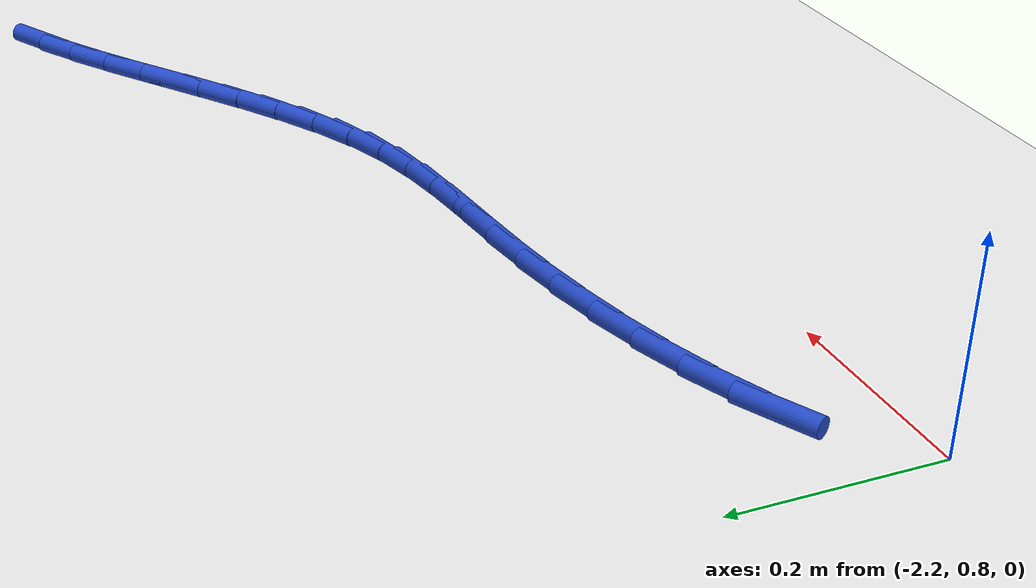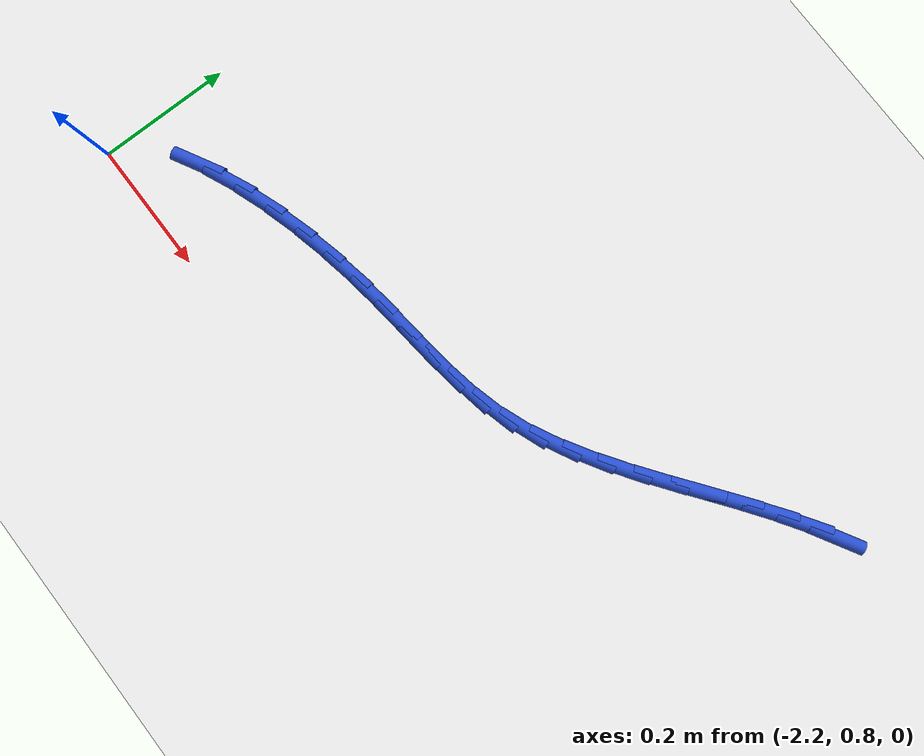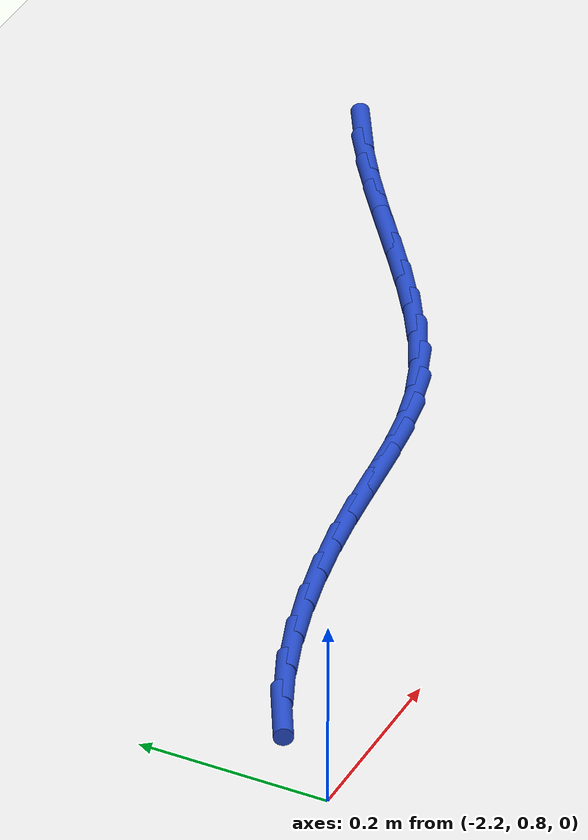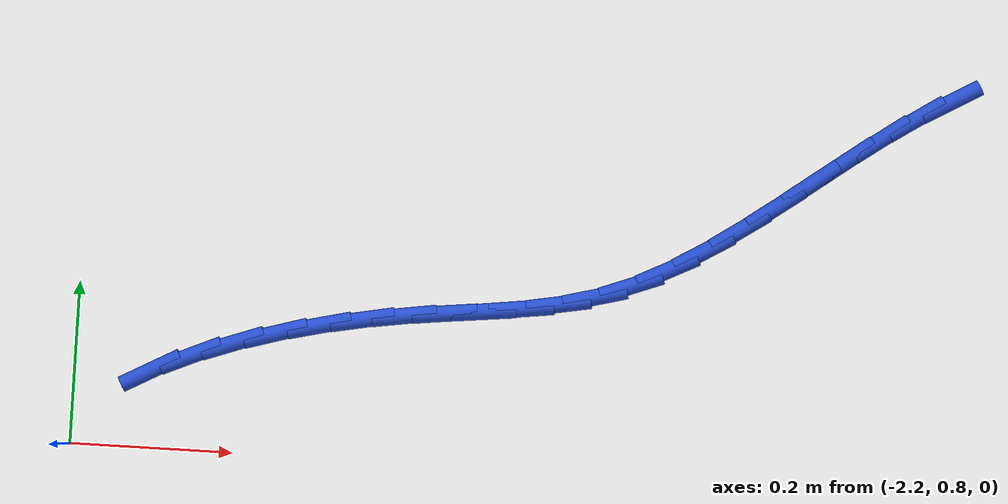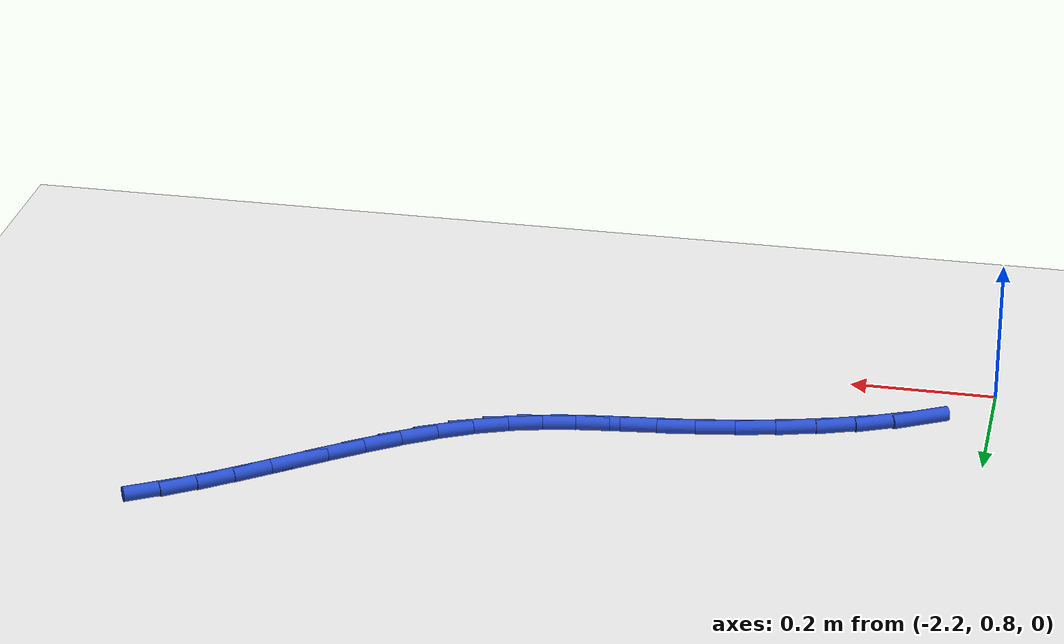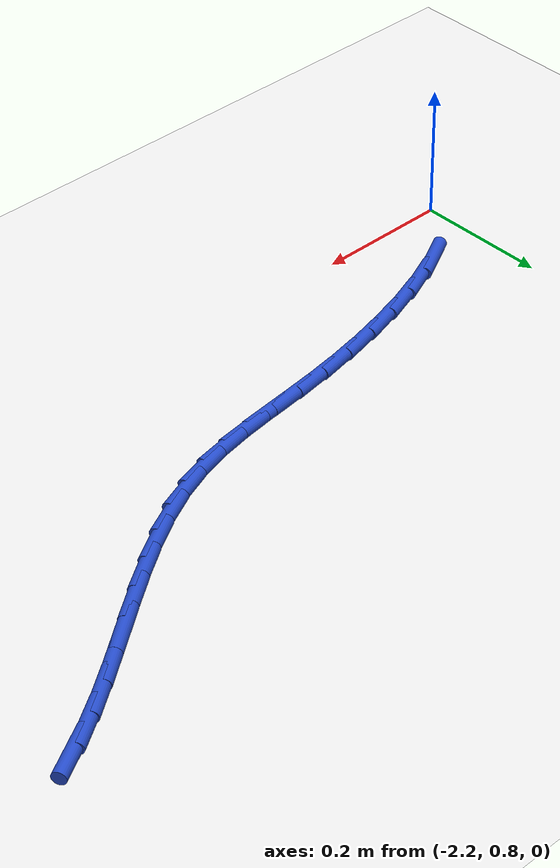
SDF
<sdf version="1.6">
 <world name="default">
  <model name="ground_plane">
   <static>1</static>
   <link name="link">
    <collision name="collision">
     <geometry><plane><normal>0 0 1</normal><size>100 100</size></plane></geometry>
     <surface><friction><ode><mu>100</mu><mu2>50</mu2></ode></friction></surface>
    </collision>
    <visual name="visual">
     <cast_shadows>0</cast_shadows>
     <geometry><plane><normal>0 0 1</normal><size>100 100</size></plane></geometry>
     <material>
      <script><uri>file://media/materials/scripts/gazebo.material</uri><name>Gazebo/WhiteGlow</name></script>
     </material>
    </visual>
   </link>
  </model>
  <model name="line">
   <link name="link_42">
    <pose>-1.1442312650430837 1.2815156157984304 0.01 0 1.57 0.5200794726018029</pose>
    <collision name="collision">
     <geometry><cylinder><radius>0.01</radius><length>0.08</length></cylinder></geometry>
    </collision>
    <visual name="visual">
     <material>
      <script><name>Gazebo/Blue</name><uri>file://media/materials/scripts/gazebo.material</uri></script>
     </material>
     <geometry><cylinder><radius>0.01</radius><length>0.08</length></cylinder></geometry>
    </visual>
   </link>
   <link name="link_43">
    <pose>-1.1851489440574348 1.2580833965421379 0.01 0 1.57 0.5809621670062222</pose>
    <collision name="collision">
     <geometry><cylinder><radius>0.01</radius><length>0.08</length></cylinder></geometry>
    </collision>
    <visual name="visual">
     <material>
      <script><name>Gazebo/Blue</name><uri>file://media/materials/scripts/gazebo.material</uri></script>
     </material>
     <geometry><cylinder><radius>0.01</radius><length>0.08</length></cylinder></geometry>
    </visual>
   </link>
   <link name="link_44">
    <pose>-1.226392740399729 1.2310050093205518 0.01 0 1.57 0.6190403841027216</pose>
    <collision name="collision">
     <geometry><cylinder><radius>0.01</radius><length>0.08</length></cylinder></geometry>
    </collision>
    <visual name="visual">
     <material>
      <script><name>Gazebo/Blue</name><uri>file://media/materials/scripts/gazebo.material</uri></script>
     </material>
     <geometry><cylinder><radius>0.01</radius><length>0.08</length></cylinder></geometry>
    </visual>
   </link>
   <link name="link_45">
    <pose>-1.2679583298730592 1.2013911354736106 0.01 0 1.57 0.6377675494994247</pose>
    <collision name="collision">
     <geometry><cylinder><radius>0.01</radius><length>0.08</length></cylinder></geometry>
    </collision>
    <visual name="visual">
     <material>
      <script><name>Gazebo/Blue</name><uri>file://media/materials/scripts/gazebo.material</uri></script>
     </material>
     <geometry><cylinder><radius>0.01</radius><length>0.08</length></cylinder></geometry>
    </visual>
   </link>
   <link name="link_46">
    <pose>-1.3098413882805162 1.170352456341253 0.01 0 1.57 0.639021673335138</pose>
    <collision name="collision">
     <geometry><cylinder><radius>0.01</radius><length>0.08</length></cylinder></geometry>
    </collision>
    <visual name="visual">
     <material>
      <script><name>Gazebo/Blue</name><uri>file://media/materials/scripts/gazebo.material</uri></script>
     </material>
     <geometry><cylinder><radius>0.01</radius><length>0.08</length></cylinder></geometry>
    </visual>
   </link>
   <link name="link_47">
    <pose>-1.3520375914251934 1.1389996532634172 0.01 0 1.57 0.6232886761222403</pose>
    <collision name="collision">
     <geometry><cylinder><radius>0.01</radius><length>0.08</length></cylinder></geometry>
    </collision>
    <visual name="visual">
     <material>
      <script><name>Gazebo/Blue</name><uri>file://media/materials/scripts/gazebo.material</uri></script>
     </material>
     <geometry><cylinder><radius>0.01</radius><length>0.08</length></cylinder></geometry>
    </visual>
   </link>
   <link name="link_48">
    <pose>-1.394542615110181 1.1084434075800425 0.01 0 1.57 0.5897685352727546</pose>
    <collision name="collision">
     <geometry><cylinder><radius>0.01</radius><length>0.08</length></cylinder></geometry>
    </collision>
    <visual name="visual">
     <material>
      <script><name>Gazebo/Blue</name><uri>file://media/materials/scripts/gazebo.material</uri></script>
     </material>
     <geometry><cylinder><radius>0.01</radius><length>0.08</length></cylinder></geometry>
    </visual>
   </link>
   <link name="link_49">
    <pose>-1.4373521351385719 1.079794400631067 0.01 0 1.57 0.5364062704053323</pose>
    <collision name="collision">
     <geometry><cylinder><radius>0.01</radius><length>0.08</length></cylinder></geometry>
    </collision>
    <visual name="visual">
     <material>
      <script><name>Gazebo/Blue</name><uri>file://media/materials/scripts/gazebo.material</uri></script>
     </material>
     <geometry><cylinder><radius>0.01</radius><length>0.08</length></cylinder></geometry>
    </visual>
   </link>
   <link name="link_50">
    <pose>-1.4804618273134582 1.0541633137564288 0.01 0 1.57 0.4599493891614489</pose>
    <collision name="collision">
     <geometry><cylinder><radius>0.01</radius><length>0.08</length></cylinder></geometry>
    </collision>
    <visual name="visual">
     <material>
      <script><name>Gazebo/Blue</name><uri>file://media/materials/scripts/gazebo.material</uri></script>
     </material>
     <geometry><cylinder><radius>0.01</radius><length>0.08</length></cylinder></geometry>
    </visual>
   </link>
   <link name="link_51">
    <pose>-1.5238673674379313 1.032660828296068 0.01 0 1.57 0.3579654578195431</pose>
    <collision name="collision">
     <geometry><cylinder><radius>0.01</radius><length>0.08</length></cylinder></geometry>
    </collision>
    <visual name="visual">
     <material>
      <script><name>Gazebo/Blue</name><uri>file://media/materials/scripts/gazebo.material</uri></script>
     </material>
     <geometry><cylinder><radius>0.01</radius><length>0.08</length></cylinder></geometry>
    </visual>
   </link>
   <link name="link_52">
    <pose>-1.5675752768028692 1.0163104935056506 0.01 0 1.57 0.25476808881046115</pose>
    <collision name="collision">
     <geometry><cylinder><radius>0.01</radius><length>0.08</length></cylinder></geometry>
    </collision>
    <visual name="visual">
     <material>
      <script><name>Gazebo/Blue</name><uri>file://media/materials/scripts/gazebo.material</uri></script>
     </material>
     <geometry><cylinder><radius>0.01</radius><length>0.08</length></cylinder></geometry>
    </visual>
   </link>
   <link name="link_53">
    <pose>-1.6117578360056053 1.004804157001896 0.01 0 1.57 0.17631539324810577</pose>
    <collision name="collision">
     <geometry><cylinder><radius>0.01</radius><length>0.08</length></cylinder></geometry>
    </collision>
    <visual name="visual">
     <material>
      <script><name>Gazebo/Blue</name><uri>file://media/materials/scripts/gazebo.material</uri></script>
     </material>
     <geometry><cylinder><radius>0.01</radius><length>0.08</length></cylinder></geometry>
    </visual>
   </link>
   <link name="link_54">
    <pose>-1.6567167303829393 0.9967940354612354 0.01 0 1.57 0.12722478906380533</pose>
    <collision name="collision">
     <geometry><cylinder><radius>0.01</radius><length>0.08</length></cylinder></geometry>
    </collision>
    <visual name="visual">
     <material>
      <script><name>Gazebo/Blue</name><uri>file://media/materials/scripts/gazebo.material</uri></script>
     </material>
     <geometry><cylinder><radius>0.01</radius><length>0.08</length></cylinder></geometry>
    </visual>
   </link>
   <link name="link_55">
    <pose>-1.702757079837194 0.9909047524394918 0.01 0 1.57 0.10803553216902584</pose>
    <collision name="collision">
     <geometry><cylinder><radius>0.01</radius><length>0.08</length></cylinder></geometry>
    </collision>
    <visual name="visual">
     <material>
      <script><name>Gazebo/Blue</name><uri>file://media/materials/scripts/gazebo.material</uri></script>
     </material>
     <geometry><cylinder><radius>0.01</radius><length>0.08</length></cylinder></geometry>
    </visual>
   </link>
   <link name="link_56">
    <pose>-1.7501840042706907 0.9857609314924872 0.01 0 1.57 0.11700982912704051</pose>
    <collision name="collision">
     <geometry><cylinder><radius>0.01</radius><length>0.08</length></cylinder></geometry>
    </collision>
    <visual name="visual">
     <material>
      <script><name>Gazebo/Blue</name><uri>file://media/materials/scripts/gazebo.material</uri></script>
     </material>
     <geometry><cylinder><radius>0.01</radius><length>0.08</length></cylinder></geometry>
    </visual>
   </link>
   <link name="link_57">
    <pose>-1.7993026235857505 0.9799871961760432 0.01 0 1.57 0.14953764125680877</pose>
    <collision name="collision">
     <geometry><cylinder><radius>0.01</radius><length>0.08</length></cylinder></geometry>
    </collision>
    <visual name="visual">
     <material>
      <script><name>Gazebo/Blue</name><uri>file://media/materials/scripts/gazebo.material</uri></script>
     </material>
     <geometry><cylinder><radius>0.01</radius><length>0.08</length></cylinder></geometry>
    </visual>
   </link>
   <link name="link_58">
    <pose>-1.8503232030662449 0.9723003167325845 0.01 0 1.57 0.1907710073906245</pose>
    <collision name="collision">
     <geometry><cylinder><radius>0.01</radius><length>0.08</length></cylinder></geometry>
    </collision>
    <visual name="visual">
     <material>
      <script><name>Gazebo/Blue</name><uri>file://media/materials/scripts/gazebo.material</uri></script>
     </material>
     <geometry><cylinder><radius>0.01</radius><length>0.08</length></cylinder></geometry>
    </visual>
   </link>
   <link name="link_59">
    <pose>-1.902656511900261 0.9621937352986513 0.01 0 1.57 0.23565278258140304</pose>
    <collision name="collision">
     <geometry><cylinder><radius>0.01</radius><length>0.08</length></cylinder></geometry>
    </collision>
    <visual name="visual">
     <material>
      <script><name>Gazebo/Blue</name><uri>file://media/materials/scripts/gazebo.material</uri></script>
     </material>
     <geometry><cylinder><radius>0.01</radius><length>0.08</length></cylinder></geometry>
    </visual>
   </link>
   <link name="link_60">
    <pose>-1.955312467155676 0.9495503025108446 0.01 0 1.57 0.2861339120182787</pose>
    <collision name="collision">
     <geometry><cylinder><radius>0.01</radius><length>0.08</length></cylinder></geometry>
    </collision>
    <visual name="visual">
     <material>
      <script><name>Gazebo/Blue</name><uri>file://media/materials/scripts/gazebo.material</uri></script>
     </material>
     <geometry><cylinder><radius>0.01</radius><length>0.08</length></cylinder></geometry>
    </visual>
   </link>
   <link name="link_61">
    <pose>-2.0072979822817025 0.9342557868764225 0.01 0 1.57 0.3445685625059265</pose>
    <collision name="collision">
     <geometry><cylinder><radius>0.01</radius><length>0.08</length></cylinder></geometry>
    </collision>
    <visual name="visual">
     <material>
      <script><name>Gazebo/Blue</name><uri>file://media/materials/scripts/gazebo.material</uri></script>
     </material>
     <geometry><cylinder><radius>0.01</radius><length>0.08</length></cylinder></geometry>
    </visual>
   </link>
   <link name="link_62">
    <pose>-2.057619970727552 0.916195956902642 0.01 0 1.57 0.41391984843091195</pose>
    <collision name="collision">
     <geometry><cylinder><radius>0.01</radius><length>0.08</length></cylinder></geometry>
    </collision>
    <visual name="visual">
     <material>
      <script><name>Gazebo/Blue</name><uri>file://media/materials/scripts/gazebo.material</uri></script>
     </material>
     <geometry><cylinder><radius>0.01</radius><length>0.08</length></cylinder></geometry>
    </visual>
   </link>
   <link name="link_63">
    <pose>-2.1052853459424368 0.8952565810967607 0.01 0 1.57 0.49802559149440073</pose>
    <collision name="collision">
     <geometry><cylinder><radius>0.01</radius><length>0.08</length></cylinder></geometry>
    </collision>
    <visual name="visual">
     <material>
      <script><name>Gazebo/Blue</name><uri>file://media/materials/scripts/gazebo.material</uri></script>
     </material>
     <geometry><cylinder><radius>0.01</radius><length>0.08</length></cylinder></geometry>
    </visual>
   </link>
  </model>
 </world>
</sdf>
